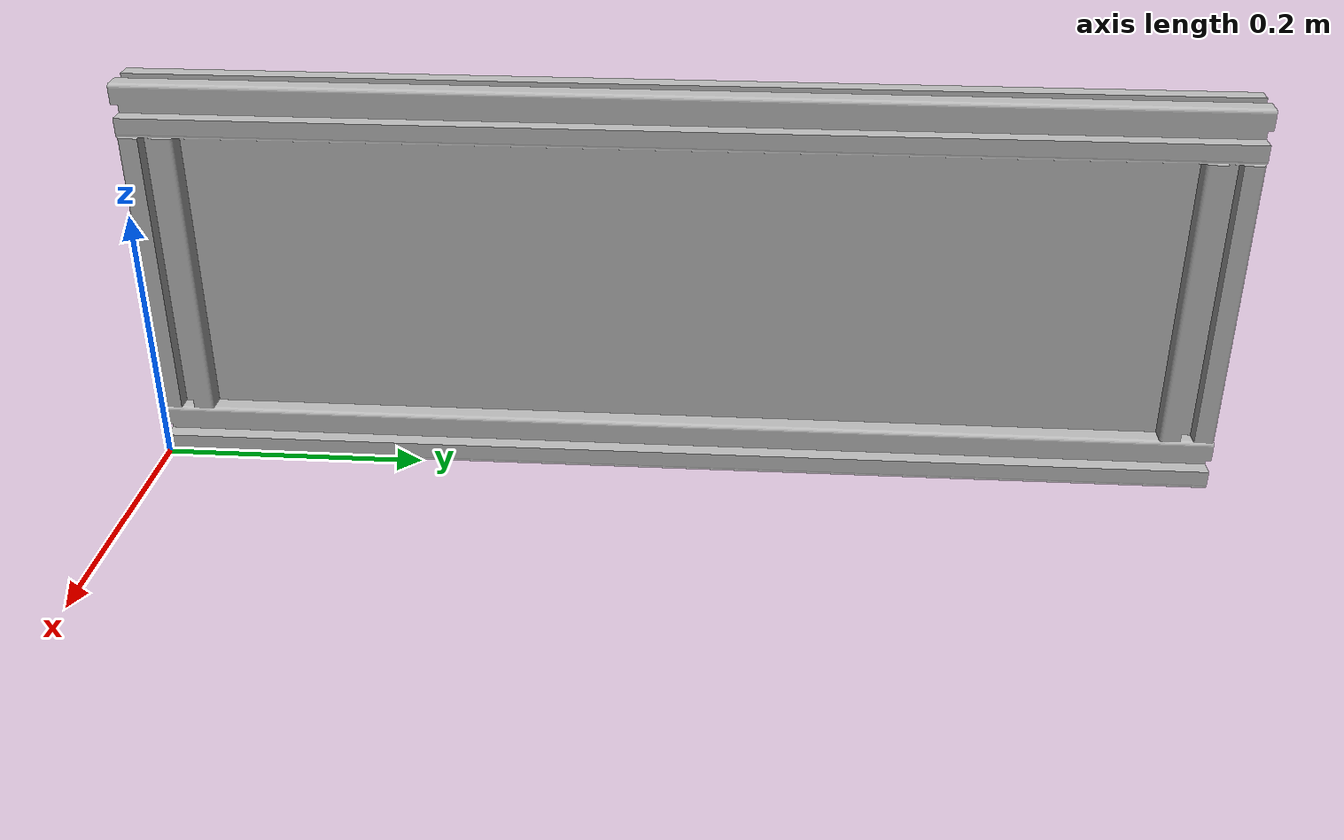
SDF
<?xml version="1.0" ?>
<sdf version="1.5">
  <model name="Wall_800x300x40">
    <static>true</static>
    <link name="link">
      <pose>0 0 0 0 0 0</pose>
      <collision name="collision">
        <geometry>
          <mesh>
            <uri>model://wall_800x300x40/meshes/wall_800x300x40.dae</uri>
          </mesh>
        </geometry>
      </collision>
      <visual name="visual">
        <geometry>
          <mesh>
            <uri>model://wall_800x300x40/meshes/wall_800x300x40.dae</uri>
          </mesh>
        </geometry>
      </visual>
    </link>
  </model>
</sdf>
